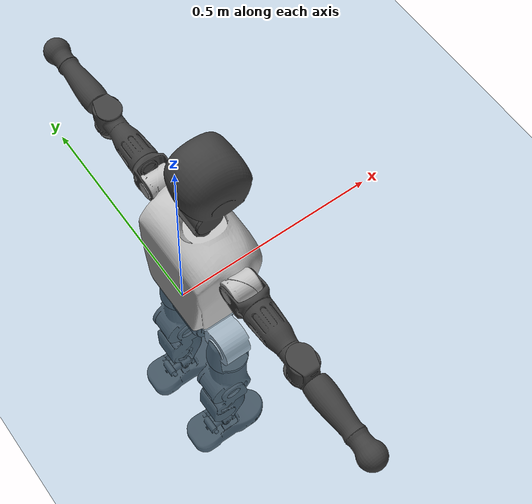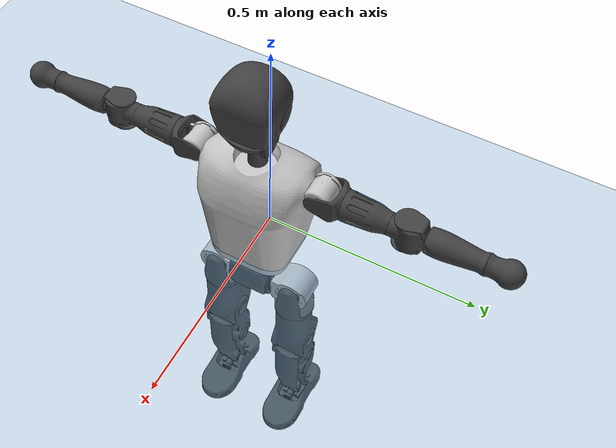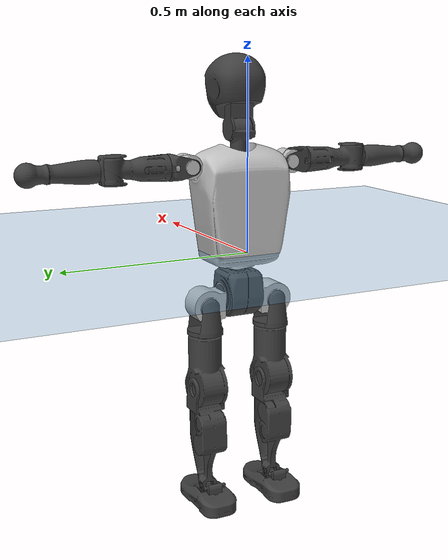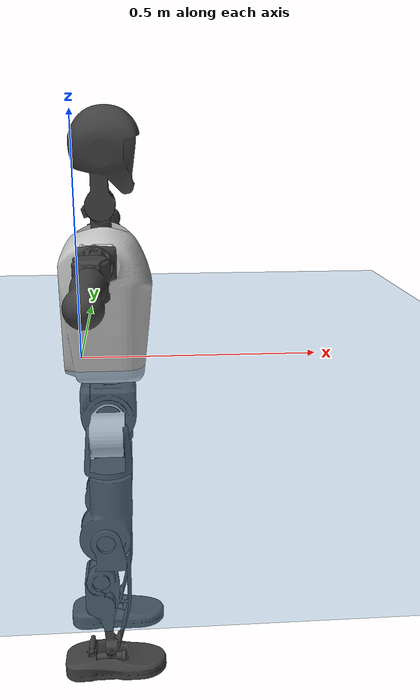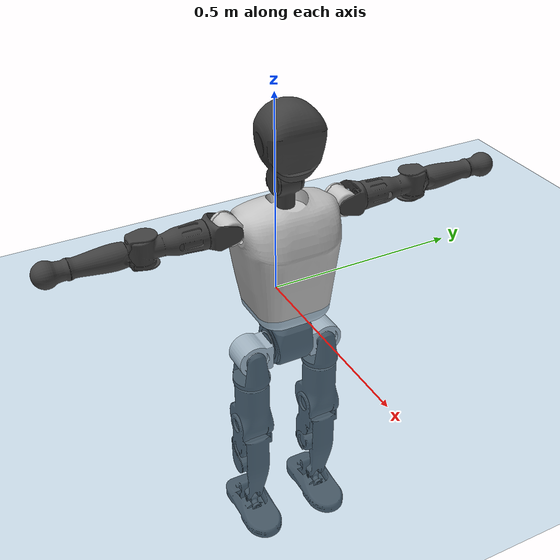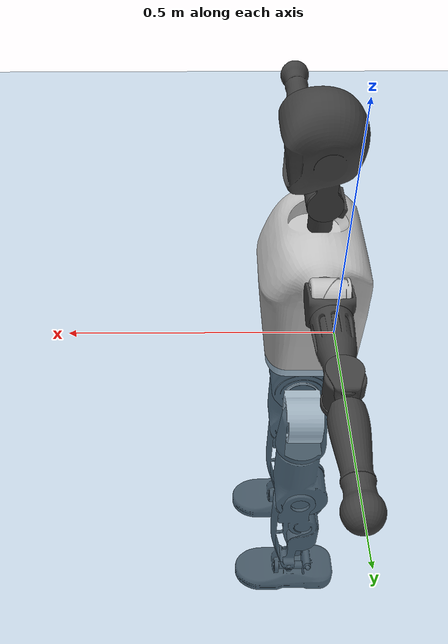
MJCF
<mujoco model="T1">
  <compiler angle="radian" assetdir="assets" balanceinertia="true" inertiafromgeom="false"/>

  <option timestep="0.005" density="1.2" viscosity="2e-05"/>

  <size nkey="1"/>

  <visual>
    <quality shadowsize="8192"/>
    <map shadowclip="0.5"/>
  </visual>

  <default>
    <default class="/">
      <joint armature="0.01" damping="0.01" frictionloss="0.1"/>
      <geom contype="0" conaffinity="0" group="1" solref="-1000 -80"/>
      <site size="0.01 0.005 0.005" group="5"/>
      <general forcelimited="true" biastype="affine" gainprm="25" biasprm="0 -25 -0.6"/>
      <default class="t1">
        <geom rgba="0.25 0.25 0.25 1"/>
        <default class="visual">
          <geom type="mesh" group="2"/>
        </default>
        <default class="collision">
          <geom group="3"/>
        </default>
        <default class="foot">
          <geom size="0.1115 0.05 0.015" type="box" condim="6" group="4" priority="1" solimp="0.015 1 0.015"/>
        </default>
        <default class="reward_collision_sphere">
          <geom group="5" rgba="1 0 0 1"/>
        </default>
      </default>
    </default>
  </default>

  <asset>
    <texture type="skybox" colorspace="auto" name="//unnamed_texture_0" builtin="gradient" rgb1="0.95 0.95 0.95" rgb2="0.95 0.95 0.95" width="100" height="600"/>
    <texture type="2d" colorspace="auto" name="texplane" builtin="checker" rgb1="0.345 0.575 0.748" rgb2="0.345 0.575 0.748" markrgb="1 1 1" width="512" height="512"/>
    <material name="MatPlane" class="/" texture="texplane" texuniform="true" texrepeat="2 2" specular="0.9"/>
    <mesh name="Trunk" class="/" file="Trunk.stl"/>
    <mesh name="H1" class="/" file="H1.stl"/>
    <mesh name="H2" class="/" file="H2.stl"/>
    <mesh name="AL1" class="/" file="AL1.stl"/>
    <mesh name="AL2" class="/" file="AL2.stl"/>
    <mesh name="AL3" class="/" file="AL3.stl"/>
    <mesh name="left_hand_link" class="/" file="left_hand_link.stl"/>
    <mesh name="AR1" class="/" file="AR1.stl"/>
    <mesh name="AR2" class="/" file="AR2.stl"/>
    <mesh name="AR3" class="/" file="AR3.stl"/>
    <mesh name="right_hand_link" class="/" file="right_hand_link.stl"/>
    <mesh name="Waist" class="/" file="Waist.stl"/>
    <mesh name="Hip_Pitch_Left" class="/" file="Hip_Pitch_Left.stl"/>
    <mesh name="Hip_Roll_Left" class="/" file="Hip_Roll_Left.stl"/>
    <mesh name="Hip_Yaw_Left" class="/" file="Hip_Yaw_Left.stl"/>
    <mesh name="Shank_Left" class="/" file="Shank_Left.stl"/>
    <mesh name="Ankle_Cross_Left" class="/" file="Ankle_Cross_Left.stl"/>
    <mesh name="left_foot_link" class="/" file="left_foot_link.stl"/>
    <mesh name="Hip_Pitch_Right" class="/" file="Hip_Pitch_Right.stl"/>
    <mesh name="Hip_Roll_Right" class="/" file="Hip_Roll_Right.stl"/>
    <mesh name="Hip_Yaw_Right" class="/" file="Hip_Yaw_Right.stl"/>
    <mesh name="Shank_Right" class="/" file="Shank_Right.stl"/>
    <mesh name="Ankle_Cross_Right" class="/" file="Ankle_Cross_Right.stl"/>
    <mesh name="right_foot_link" class="/" file="right_foot_link.stl"/>
  </asset>

  <worldbody>
    <geom name="floor" class="/" size="100 100 0.125" type="plane" group="0" material="MatPlane"/>
    <light name="toplight_shadow" class="/" pos="0 0 5" dir="0.0990148 0.0990148 -0.990148" type="directional" ambient="0.04 0.04 0.04" diffuse="0.55 0.55 0.55" specular="0.12 0.12 0.12"/>
    <light name="toplight_fill" class="/" pos="0 0 5" dir="0.0990148 0.0990148 -0.990148" type="directional" castshadow="false" ambient="0.04 0.04 0.04" diffuse="0.3 0.3 0.3" specular="0.08 0.08 0.08"/>
    <body name="trunk" childclass="t1" pos="-0.000866401 -0.000144018 -0.000165601" quat="1 -2.65581e-05 -0.000126365 -0.00016696">
      <inertial pos="0.0479761 -0.000508298 0.110779" quat="0.999957 0.00040986 -0.00923229 -0.000357228" mass="9.87616" diaginertia="0.0469546 0.0513304 0.0705332"/>
      <joint name="//unnamed_joint_0" type="free" armature="0" damping="0" frictionloss="0"/>
      <geom name="//unnamed_geom_1" class="visual" rgba="0.76 0.76 0.76 1" mesh="Trunk"/>
      <geom name="//unnamed_geom_2" class="collision" size="0.0711575 0.0948767 0.142315" pos="0.0525631 0 0.125736" type="box"/>
      <geom name="//unnamed_geom_3" class="reward_collision_sphere" size="0.109108" pos="0.0525631 0 0.10478"/>
      <geom name="//unnamed_geom_4" class="reward_collision_sphere" size="0.0142315" pos="0.0525631 0.0784084 0"/>
      <geom name="//unnamed_geom_5" class="reward_collision_sphere" size="0.0142315" pos="0.0525631 -0.0784084 0"/>
      <geom name="//unnamed_geom_6" class="reward_collision_sphere" size="0.0142315" pos="0.0525631 0.0987023 0.188603"/>
      <geom name="//unnamed_geom_7" class="reward_collision_sphere" size="0.0142315" pos="0.0525631 -0.0987023 0.188603"/>
      <site name="imu" pos="-0.000517409 0.00176163 -0.00398963" size="0.00948767"/>
      <camera name="track" pos="0 -1.8449 0" quat="0.707107 0.707107 0 0" mode="trackcom"/>
      <camera name="ego_camera" pos="0.106878 0 0.440075" quat="-0.5 -0.5 0.5 0.5"/>
      <body name="H1" pos="0.0534063 -0.000563526 0.253714" quat="1 6.38587e-05 2.56491e-05 0.000140592">
        <inertial pos="-0.000370883 -0.00165915 0.0607378" quat="0.764288 -0.0137508 0.00192182 0.644725" mass="0.375535" diaginertia="0.000124214 0.000148304 0.000188573"/>
        <joint name="AAHead_yaw" pos="0 0 0" axis="-0.000188309 -1.41851e-05 1" range="-1.56645 1.5725" armature="0.00937162" damping="0.00923465" frictionloss="0.0912744"/>
        <geom name="//unnamed_geom_8" class="visual" mesh="H1"/>
        <body name="H2" pos="2.50575e-06 -0.000280343 0.0646447" quat="1 0.000305101 -9.85989e-05 0.0001237">
          <inertial pos="0.00599462 0.000204958 0.103228" quat="0.988604 0.10688 -0.0724984 -0.0773483" mass="0.532664" diaginertia="0.00104849 0.00128338 0.00214957"/>
          <joint name="Head_pitch" pos="0 0 0" axis="0.000509093 -1 0.000157881" range="-1.21343 0.355018" armature="0.00909145" damping="0.00550796" frictionloss="0.0953036"/>
          <geom name="//unnamed_geom_9" class="visual" mesh="H2"/>
          <geom name="//unnamed_geom_10" class="collision" size="0.0759013" pos="0.00876052 0 0.115258"/>
          <geom name="//unnamed_geom_11" class="reward_collision_sphere" size="0.085389" pos="0.017521 0 0.10478"/>
        </body>
      </body>
      <body name="AL1" pos="0.0505114 0.0991506 0.228673" quat="1 1.64086e-05 0.000409465 9.90916e-06">
        <inertial pos="-0.00114337 0.0412935 0.000605227" quat="0.50407 0.497434 -0.502867 0.495579" mass="0.44495" diaginertia="0.000691465 0.000847254 0.000365911"/>
        <joint name="Left_Shoulder_Pitch" pos="0 0 0" axis="0.00523163 0.999983 -0.00276167" range="-3.31841 1.21898" armature="0.00906682" damping="0.00947096" frictionloss="0.0988827"/>
        <geom name="//unnamed_geom_12" class="visual" rgba="0.76 0.76 0.76 1" mesh="AL1"/>
        <body name="AL2" pos="0.00164167 0.0438555 -0.000935979" quat="1 2.50481e-05 6.85648e-05 1.17398e-06">
          <inertial pos="0.0032326 0.0344718 -0.00101859" quat="0.487962 0.51177 -0.48796 0.511742" mass="0.137826" diaginertia="0.000205159 0.000232059 0.000225423"/>
          <joint name="Left_Shoulder_Roll" pos="0 0 0" axis="-1 -0.000199139 0.000144378" stiffness="0.00163396" range="-1.58921 1.74678" armature="0.00951131" damping="0.00729404" frictionloss="0.0950398"/>
          <geom name="//unnamed_geom_13" class="visual" mesh="AL2"/>
          <body name="AL3" pos="0.00108484 0.0560721 -0.000215053" quat="1 -0.000122399 0.000183356 0.000335871">
            <inertial pos="-0.000252704 0.0792173 -0.000947179" quat="0.708026 0.706183 -0.00210777 -0.000660162" mass="0.871561" diaginertia="0.00662516 0.00859921 0.000787862"/>
            <joint name="Left_Elbow_Pitch" pos="0 0 0" axis="4.31253e-05 -1 0.000985255" stiffness="0.00143028" range="-2.26906 2.25874" armature="0.00971275" damping="0.0138862" frictionloss="0.0944628"/>
            <geom name="//unnamed_geom_14" class="visual" mesh="AL3"/>
            <geom name="//unnamed_geom_15" class="collision" size="0.028463 0.0711575" pos="0 0.0461226 0" quat="0.707105 0.707108 0 0" type="cylinder"/>
            <geom name="//unnamed_geom_16" class="reward_collision_sphere" size="0.0341556"/>
            <body name="left_hand_link" pos="9.37842e-08 0.13592 0.00059871" quat="1 -0.000157923 -0.000210293 -0.000196072">
              <inertial pos="0.000584988 0.101647 0.000142335" quat="0.707715 0.706498 5.79822e-05 -0.000114591" mass="0.282583" diaginertia="0.00422342 0.00542948 0.000271963"/>
              <joint name="Left_Elbow_Yaw" pos="0 0 0" axis="-0.00619281 0.00275983 0.999977" range="-2.46071 0.0200408" armature="0.0091436" damping="0.00687915" frictionloss="0.0916943"/>
              <geom name="//unnamed_geom_17" class="visual" mesh="left_hand_link"/>
              <geom name="//unnamed_geom_18" class="collision" size="0.028463 0.0830171" pos="0 0.119919 0" quat="0.707105 0.707108 0 0" type="cylinder"/>
              <geom name="//unnamed_geom_19" class="reward_collision_sphere" size="0.0474383"/>
              <geom name="//unnamed_geom_20" class="reward_collision_sphere" size="0.0332068" pos="0 0.10147 0"/>
              <geom name="//unnamed_geom_21" class="reward_collision_sphere" size="0.0332068" pos="0 0.198327 0"/>
            </body>
          </body>
        </body>
      </body>
      <body name="AR1" pos="0.0494231 -0.0969028 0.229114" quat="1 -3.17375e-06 0.000687058 -0.000261607">
        <inertial pos="-0.00161946 -0.0413935 -9.67161e-05" quat="0.504262 0.495663 -0.504348 0.495653" mass="0.454576" diaginertia="0.000706043 0.000865519 0.000371061"/>
        <joint name="Right_Shoulder_Pitch" pos="0 0 0" axis="-0.000893989 -0.999997 -0.00247545" range="-1.23245 3.31375" armature="0.00910195" damping="0.00493157" frictionloss="0.0986894"/>
        <geom name="//unnamed_geom_22" class="visual" rgba="0.76 0.76 0.76 1" mesh="AR1"/>
        <body name="AR2" pos="-0.00119367 -0.0435007 0.000248561" quat="1 3.77113e-05 -5.68189e-05 -3.95186e-05">
          <inertial pos="0.00407512 -0.0357156 0.000335435" quat="0.511482 0.48894 -0.511342 0.487702" mass="0.135511" diaginertia="0.000204786 0.00022743 0.000219814"/>
          <joint name="Right_Shoulder_Roll" pos="0 0 0" axis="-0.999998 -0.000221619 0.00185855" range="-1.73042 1.56806" armature="0.00927863" damping="0.00787931" frictionloss="0.0958543"/>
          <geom name="//unnamed_geom_23" class="visual" mesh="AR2"/>
          <body name="AR3" pos="-0.000854298 -0.0569343 -0.000355113" quat="1 5.62737e-05 -9.0581e-05 6.94438e-05">
            <inertial pos="-0.00044854 -0.0787958 -2.99096e-05" quat="0.709521 0.704679 -0.00233005 0.0013926" mass="0.869388" diaginertia="0.00659337 0.00852956 0.000784513"/>
            <joint name="Right_Elbow_Pitch" pos="0 0 0" axis="0.00356299 0.999992 -0.0019567" range="-2.27168 2.28626" armature="0.00951636" damping="0.00715316" frictionloss="0.094671"/>
            <geom name="//unnamed_geom_24" class="visual" mesh="AR3"/>
            <geom name="//unnamed_geom_25" class="collision" size="0.028463 0.0711575" pos="0 -0.0461226 0" quat="0.707105 0.707108 0 0" type="cylinder"/>
            <geom name="//unnamed_geom_26" class="reward_collision_sphere" size="0.0341556"/>
            <body name="right_hand_link" pos="-0.000951922 -0.136402 -7.06445e-05" quat="1 1.51382e-06 -2.49642e-05 2.59895e-05">
              <inertial pos="-0.000818183 -0.101412 0.000644071" quat="0.706387 0.707826 0.000230692 0.000147245" mass="0.278176" diaginertia="0.00422647 0.00543577 0.000272478"/>
              <joint name="Right_Elbow_Yaw" pos="0 0 0" axis="-0.000753653 -0.000358038 1" range="-0.0177888 2.43518" armature="0.00944059" damping="0.0122614" frictionloss="0.0956346"/>
              <geom name="//unnamed_geom_27" class="visual" mesh="right_hand_link"/>
              <geom name="//unnamed_geom_28" class="collision" size="0.028463 0.0830171" pos="0 -0.119919 0" quat="0.707105 0.707108 0 0" type="cylinder"/>
              <geom name="//unnamed_geom_29" class="reward_collision_sphere" size="0.0474383"/>
              <geom name="//unnamed_geom_30" class="reward_collision_sphere" size="0.0332068" pos="0 -0.10147 0"/>
              <geom name="//unnamed_geom_31" class="reward_collision_sphere" size="0.0332068" pos="0 -0.198327 0"/>
            </body>
          </body>
        </body>
      </body>
      <body name="Waist" pos="0.0550682 -0.000659863 -0.120482" quat="1 -9.51239e-05 -9.70437e-05 -0.000185754">
        <inertial pos="0.00218685 -0.000595994 0.00785917" quat="0.984091 0.00316249 -0.177594 0.00390149" mass="2.22856" diaginertia="0.00279133 0.00356254 0.00603986"/>
        <joint name="Waist" pos="0 0 0" axis="0.00231876 -0.00236713 0.999995" range="-1.55499 1.58742" armature="0.00950761" damping="0.0141431" frictionloss="0.0957654"/>
        <geom name="//unnamed_geom_32" class="visual" mesh="Waist"/>
        <body name="Hip_Pitch_Left" pos="0.000704285 0.0982161 1.71233e-05" quat="1 4.82328e-05 -5.73429e-05 -6.146e-05">
          <inertial pos="0.000719344 -0.0063764 -0.0190361" quat="0.975466 0.219772 0.012387 0.00355728" mass="0.873897" diaginertia="0.000944879 0.000970315 0.00158795"/>
          <joint name="Left_Hip_Pitch" pos="0 0 0" axis="-0.000269865 1 0.00022462" range="-1.80119 1.57194" armature="0.00912966" damping="0.00783089" frictionloss="0.0950668"/>
          <geom name="//unnamed_geom_33" class="visual" rgba="0.76 0.76 0.76 1" mesh="Hip_Pitch_Left"/>
          <body name="Hip_Roll_Left" pos="0.000313865 4.94897e-05 -0.0210909" quat="1 0.000191701 -3.17881e-05 3.19207e-05">
            <inertial pos="0.000113851 -0.00041789 -0.0562619" quat="0.70728 -0.00660559 -0.00617684 0.706876" mass="0.330124" diaginertia="0.000890241 0.00101016 0.000650389"/>
            <joint name="Left_Hip_Roll" pos="0 0 0" axis="-1 0.000326218 0.000288127" range="-1.56667 0.202411" armature="0.00985491" damping="0.0130191" frictionloss="0.0960721"/>
            <geom name="//unnamed_geom_34" class="visual" mesh="Hip_Roll_Left"/>
            <geom name="//unnamed_geom_35" class="reward_collision_sphere" size="0.0521822"/>
            <body name="Hip_Yaw_Left" pos="5.41862e-05 0.00066121 -0.08677" quat="1 5.63983e-05 5.01437e-05 -7.82942e-05">
              <inertial pos="-0.0060326 -0.000791983 -0.0937575" quat="0.695796 -0.0351273 -0.0303981 0.716736" mass="1.84452" diaginertia="0.0132318 0.0168123 0.00324698"/>
              <joint name="Left_Hip_Yaw" pos="0 0 0" axis="0.00133127 -0.000245742 -0.999999" range="-0.99962 0.999226" armature="0.0094518" damping="0.00767098" frictionloss="0.0921406"/>
              <geom name="//unnamed_geom_36" class="visual" mesh="Hip_Yaw_Left"/>
              <geom name="//unnamed_geom_37" class="collision" size="0.0474383 0.0759013" type="cylinder"/>
              <body name="Shank_Left" pos="-0.0109139 -0.000359877 -0.14037" quat="1 -2.44421e-05 1.80913e-05 3.03692e-05">
                <inertial pos="-0.00552872 0.000598768 -0.130123" quat="0.997556 0.00310363 -0.0249165 0.0652064" mass="1.49269" diaginertia="0.0179108 0.0232546 0.0023214"/>
                <joint name="Left_Knee_Pitch" pos="0 0 0" axis="0.0045326 0.999978 -0.00488129" range="0.00272441 2.32462" armature="0.00988237" damping="0.0113917" frictionloss="0.0956242"/>
                <geom name="//unnamed_geom_38" class="visual" mesh="Shank_Left"/>
                <geom name="//unnamed_geom_39" class="collision" size="0.0474383 0.0711575" pos="0 0 -0.125736" type="cylinder"/>
                <geom name="//unnamed_geom_40" class="reward_collision_sphere" size="0.0616698"/>
                <body name="Ankle_Cross_Left" pos="-0.0010245 -0.000137432 -0.293344" quat="1 -9.0212e-05 -4.17047e-05 7.77296e-05">
                  <inertial pos="-0.00306541 0.000517307 -0.00827964" quat="0.443406 0.550761 0.551062 0.443152" mass="0.0617766" diaginertia="1.47245e-05 1.69602e-05 1.42718e-05"/>
                  <joint name="Left_Ankle_Pitch" pos="0 0 0" axis="0.00460305 0.999989 0.00108669" stiffness="0.000924695" range="-0.873415 0.366" armature="0.00965952" damping="0.0083864" frictionloss="0.0971928"/>
                  <geom name="//unnamed_geom_41" class="visual" mesh="Ankle_Cross_Left"/>
                  <body name="left_foot_link" pos="4.41274e-05 -0.000357899 -0.0120688" quat="1 9.80766e-05 3.5561e-05 -5.70614e-05">
                    <inertial pos="-0.000284849 -0.00061448 -0.00946407" quat="0.000434539 0.620079 -0.000335464 0.784539" mass="0.58114" diaginertia="0.00139258 0.00160022 0.00277493"/>
                    <joint name="Left_Ankle_Roll" pos="0 0 0" axis="-0.999997 -0.00204397 -0.000975543" range="-0.457883 0.451924" armature="0.00947394" damping="0.00483176" frictionloss="0.0936865"/>
                    <geom name="//unnamed_geom_42" class="visual" mesh="left_foot_link"/>
                    <geom name="left_foot" class="foot" size="0.103268 0.0471675 0.014721" pos="0.00876052 0 -0.015717"/>
                    <geom name="//unnamed_geom_44" class="reward_collision_sphere" size="0.0493359" pos="0.00876052 0 -0.015717"/>
                    <geom name="//unnamed_geom_45" class="reward_collision_sphere" size="0.028463" pos="0.0832249 -0.0212164 -0.015717"/>
                    <geom name="//unnamed_geom_46" class="reward_collision_sphere" size="0.028463" pos="-0.0613236 -0.0212164 -0.015717"/>
                    <site name="left_foot" class="foot" pos="0.00876052 0 -0.015717" size="0.00948767"/>
                  </body>
                </body>
              </body>
            </body>
          </body>
        </body>
        <body name="Hip_Pitch_Right" pos="-0.000180848 -0.0977559 0.000858182" quat="1 0.000287935 -0.000162496 -0.000274757">
          <inertial pos="0.000211182 0.00711792 -0.0182654" quat="0.973222 -0.229344 0.0151732 -0.00329086" mass="0.872203" diaginertia="0.000928916 0.000976397 0.00156697"/>
          <joint name="Right_Hip_Pitch" pos="0 0 0" axis="0.00203743 -0.999997 -0.00129428" range="-1.58662 1.80308" armature="0.00935477" damping="0.00531219" frictionloss="0.0948125"/>
          <geom name="//unnamed_geom_47" class="visual" rgba="0.76 0.76 0.76 1" mesh="Hip_Pitch_Right"/>
          <body name="Hip_Roll_Right" pos="0.000352853 -1.32655e-05 -0.0206418" quat="1 4.31173e-05 4.06815e-06 -3.62049e-06">
            <inertial pos="0.000985506 0.000625001 -0.0568545" quat="0.707928 -0.00608017 -0.00649383 0.706229" mass="0.331668" diaginertia="0.000908071 0.0010249 0.000654198"/>
            <joint name="Right_Hip_Roll" pos="0 0 0" axis="-0.999985 -0.00510404 0.00210471" stiffness="0.00219094" range="-0.202734 1.56112" armature="0.00992809" damping="0.00626432" frictionloss="0.0970686"/>
            <geom name="//unnamed_geom_48" class="visual" mesh="Hip_Roll_Right"/>
            <geom name="//unnamed_geom_49" class="reward_collision_sphere" size="0.0521822"/>
            <body name="Hip_Yaw_Right" pos="0.000386962 -0.000231157 -0.0856042" quat="1 0.0001024 0.000149343 8.77e-05">
              <inertial pos="-0.00671865 -0.000442278 -0.0927474" quat="0.712803 -0.0311295 -0.0354584 0.699775" mass="1.85078" diaginertia="0.0132213 0.016994 0.00328328"/>
              <joint name="Right_Hip_Yaw" pos="0 0 0" axis="-0.00162119 0.0031381 -0.999994" range="-1.00564 1.01267" armature="0.00922855" damping="0.00644894" frictionloss="0.0951364"/>
              <geom name="//unnamed_geom_50" class="visual" mesh="Hip_Yaw_Right"/>
              <geom name="//unnamed_geom_51" class="collision" size="0.0474383 0.0759013" type="cylinder"/>
              <body name="Shank_Right" pos="-0.0129322 -0.000910289 -0.141452" quat="1 3.67623e-05 -0.000121378 3.06629e-05">
                <inertial pos="-0.00589592 0.0007475 -0.127781" quat="0.999302 0.00231467 -0.0228349 -0.0294571" mass="1.52443" diaginertia="0.0183453 0.0236855 0.0025114"/>
                <joint name="Right_Knee_Pitch" pos="0 0 0" axis="-0.00119017 -0.999995 0.00308069" stiffness="0.000202892" range="-2.32561 -0.00378358" armature="0.00947776" damping="0.00904125" frictionloss="0.097231"/>
                <geom name="//unnamed_geom_52" class="visual" mesh="Shank_Right"/>
                <geom name="//unnamed_geom_53" class="collision" size="0.0474383 0.0711575" pos="0 0 -0.125736" type="cylinder"/>
                <geom name="//unnamed_geom_54" class="reward_collision_sphere" size="0.0616698"/>
                <body name="Ankle_Cross_Right" pos="0.000525872 -0.00026449 -0.293602" quat="1 -2.32694e-05 2.58362e-05 5.8294e-05">
                  <inertial pos="-0.00350063 0.000927573 -0.00800333" quat="0.443503 0.550789 0.550604 0.443589" mass="0.0627357" diaginertia="1.50209e-05 1.7104e-05 1.43977e-05"/>
                  <joint name="Right_Ankle_Pitch" pos="0 0 0" axis="-0.00384746 -0.999992 -0.00126434" range="-0.363597 0.868045" armature="0.00911749" damping="0.00480037" frictionloss="0.0951142"/>
                  <geom name="//unnamed_geom_55" class="visual" mesh="Ankle_Cross_Right"/>
                  <body name="right_foot_link" pos="-0.000464845 -0.000833174 -0.0128842" quat="1 -1.49308e-05 8.81008e-06 -2.32004e-05">
                    <inertial pos="-0.000465197 -0.000181064 -0.00981866" quat="-0.00318694 0.619242 0.00199355 0.785191" mass="0.582035" diaginertia="0.0013863 0.0015968 0.00277264"/>
                    <joint name="Right_Ankle_Roll" pos="0 0 0" axis="-0.999999 -0.000613944 0.000878781" range="-0.437403 0.456352" armature="0.00932682" damping="0.00448476" frictionloss="0.0989714"/>
                    <geom name="//unnamed_geom_56" class="visual" mesh="right_foot_link"/>
                    <geom name="right_foot" class="foot" size="0.0977681 0.0451255 0.0142022" pos="0.00876052 0 -0.015717"/>
                    <geom name="//unnamed_geom_58" class="reward_collision_sphere" size="0.0379507"/>
                    <geom name="//unnamed_geom_59" class="reward_collision_sphere" size="0.028463" pos="0.00876052 0 -0.015717"/>
                    <geom name="//unnamed_geom_60" class="reward_collision_sphere" size="0.028463" pos="0.0832249 0.0212164 -0.015717"/>
                    <geom name="//unnamed_geom_61" class="reward_collision_sphere" size="0.028463" pos="-0.0613236 0.0212164 -0.015717"/>
                    <site name="right_foot" class="foot" pos="0.00876052 0 -0.015717" size="0.00948767"/>
                  </body>
                </body>
              </body>
            </body>
          </body>
        </body>
      </body>
    </body>
  </worldbody>

  <contact>
    <pair class="/" geom1="floor" geom2="left_foot" name="//unnamed_contact_0"/>
    <pair class="/" geom1="floor" geom2="right_foot" name="//unnamed_contact_1"/>
  </contact>

  <actuator>
    <general name="AAHead_yaw" class="/" joint="AAHead_yaw" forcerange="-6.43765 6.43765" gainprm="23.3" biasprm="0 -23.3 -0.567304"/>
    <general name="Head_pitch" class="/" joint="Head_pitch" forcerange="-6.75587 6.75587" gainprm="23.3" biasprm="0 -23.3 -0.567304"/>
    <general name="Left_Shoulder_Pitch" class="/" joint="Left_Shoulder_Pitch" forcerange="-16.8362 16.8362" gainprm="23.3" biasprm="0 -23.3 -0.567304"/>
    <general name="Left_Shoulder_Roll" class="/" joint="Left_Shoulder_Roll" forcerange="-17.1412 17.1412" gainprm="23.3" biasprm="0 -23.3 -0.567304"/>
    <general name="Left_Elbow_Pitch" class="/" joint="Left_Elbow_Pitch" forcerange="-16.6455 16.6455" gainprm="23.3" biasprm="0 -23.3 -0.567304"/>
    <general name="Left_Elbow_Yaw" class="/" joint="Left_Elbow_Yaw" forcerange="-16.6742 16.6742" gainprm="23.3" biasprm="0 -23.3 -0.567304"/>
    <general name="Right_Shoulder_Pitch" class="/" joint="Right_Shoulder_Pitch" forcerange="-17.4137 17.4137" gainprm="23.3" biasprm="0 -23.3 -0.567304"/>
    <general name="Right_Shoulder_Roll" class="/" joint="Right_Shoulder_Roll" forcerange="-16.807 16.807" gainprm="23.3" biasprm="0 -23.3 -0.567304"/>
    <general name="Right_Elbow_Pitch" class="/" joint="Right_Elbow_Pitch" forcerange="-17.1571 17.1571" gainprm="23.3" biasprm="0 -23.3 -0.567304"/>
    <general name="Right_Elbow_Yaw" class="/" joint="Right_Elbow_Yaw" forcerange="-17.3041 17.3041" gainprm="23.3" biasprm="0 -23.3 -0.567304"/>
    <general name="Waist" class="/" joint="Waist" forcerange="-28.2666 28.2666" gainprm="23.3" biasprm="0 -23.3 -0.567304"/>
    <general name="Left_Hip_Pitch" class="/" joint="Left_Hip_Pitch" forcerange="-42.7714 42.7714" gainprm="23.3" biasprm="0 -23.3 -0.567304"/>
    <general name="Left_Hip_Roll" class="/" joint="Left_Hip_Roll" forcerange="-28.9092 28.9092" gainprm="23.3" biasprm="0 -23.3 -0.567304"/>
    <general name="Left_Hip_Yaw" class="/" joint="Left_Hip_Yaw" forcerange="-29.3294 29.3294" gainprm="23.3" biasprm="0 -23.3 -0.567304"/>
    <general name="Left_Knee_Pitch" class="/" joint="Left_Knee_Pitch" forcerange="-55.635 55.635" gainprm="23.3" biasprm="0 -23.3 -0.567304"/>
    <general name="Left_Ankle_Pitch" class="/" joint="Left_Ankle_Pitch" forcerange="-19.4558 19.4558" gainprm="23.3" biasprm="0 -23.3 -0.567304"/>
    <general name="Left_Ankle_Roll" class="/" joint="Left_Ankle_Roll" forcerange="-14.3528 14.3528" gainprm="23.3" biasprm="0 -23.3 -0.567304"/>
    <general name="Right_Hip_Pitch" class="/" joint="Right_Hip_Pitch" forcerange="-43.1868 43.1868" gainprm="23.3" biasprm="0 -23.3 -0.567304"/>
    <general name="Right_Hip_Roll" class="/" joint="Right_Hip_Roll" forcerange="-28.0887 28.0887" gainprm="23.3" biasprm="0 -23.3 -0.567304"/>
    <general name="Right_Hip_Yaw" class="/" joint="Right_Hip_Yaw" forcerange="-28.4154 28.4154" gainprm="23.3" biasprm="0 -23.3 -0.567304"/>
    <general name="Right_Knee_Pitch" class="/" joint="Right_Knee_Pitch" forcerange="-58.2759 58.2759" gainprm="23.3" biasprm="0 -23.3 -0.567304"/>
    <general name="Right_Ankle_Pitch" class="/" joint="Right_Ankle_Pitch" forcerange="-19.2243 19.2243" gainprm="23.3" biasprm="0 -23.3 -0.567304"/>
    <general name="Right_Ankle_Roll" class="/" joint="Right_Ankle_Roll" forcerange="-14.3083 14.3083" gainprm="23.3" biasprm="0 -23.3 -0.567304"/>
  </actuator>

  <sensor>
    <gyro site="imu" name="imu_angular_velocity"/>
    <velocimeter site="imu" name="imu_linear_velocity"/>
    <framelinvel objtype="site" objname="left_foot" name="left_foot_global_linear_velocity"/>
    <framelinvel objtype="site" objname="right_foot" name="right_foot_global_linear_velocity"/>
  </sensor>

  <keyframe>
    <key name="home" qpos="0 0 0.6385 1 0 0 0 0 0 0 1.4 0 -0.4 0 -1.4 0 0.4 0 -0.4 0 0 0.8 -0.4 0 0.4 0 0 -0.8 0.4 0"/>
  </keyframe>
</mujoco>
